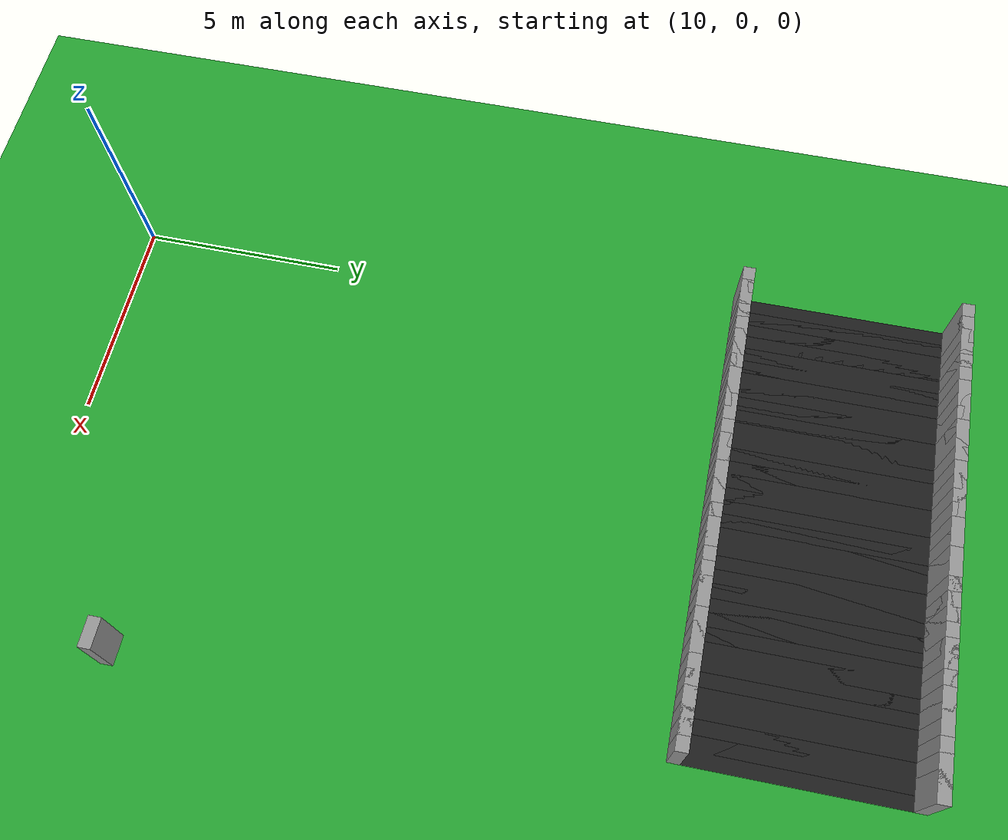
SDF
<sdf version="1.6">
 <world name="loop_stadium">
  <include><uri>model://sun</uri></include>
  <model name="ground_plane">
   <static>true</static>
   <link name="link">
    <collision name="collision">
     <surface><friction><ode><mu>100</mu><mu2>50</mu2></ode></friction></surface>
     <geometry><plane><normal>0 0 1</normal><size>120 120</size></plane></geometry>
    </collision>
    <visual name="visual">
     <geometry><plane><normal>0 0 1</normal><size>120 120</size></plane></geometry>
     <material>
      <script><uri>file://media/materials/scripts/gazebo.material</uri><name>Gazebo/Green</name></script>
     </material>
    </visual>
   </link>
  </model>
  <model name="curbL_59">
   <static>true</static>
   <pose>20.696 2.650 0.750 0 0 0.00000</pose>
   <link name="link">
    <collision name="collision"><geometry><box><size>0.708 0.300 1.500</size></box></geometry></collision>
    <visual name="visual">
     <geometry><box><size>0.708 0.300 1.500</size></box></geometry>
     <material>
      <script><uri>file://media/materials/scripts/gazebo.material</uri><name>Gazebo/Grey</name></script>
     </material>
    </visual>
   </link>
  </model>
  <model name="asphalt_160">
   <static>true</static>
   <pose>20.348 18.001 0.005 0 0 3.14159</pose>
   <link name="link">
    <visual name="visual">
     <geometry><box><size>0.708 5.000 0.010</size></box></geometry>
     <material>
      <script><uri>file://media/materials/scripts/gazebo.material</uri><name>Gazebo/Black</name></script>
     </material>
    </visual>
   </link>
  </model>
  <model name="curbL_160">
   <static>true</static>
   <pose>20.348 15.351 0.750 0 0 3.14159</pose>
   <link name="link">
    <collision name="collision"><geometry><box><size>0.708 0.300 1.500</size></box></geometry></collision>
    <visual name="visual">
     <geometry><box><size>0.708 0.300 1.500</size></box></geometry>
     <material>
      <script><uri>file://media/materials/scripts/gazebo.material</uri><name>Gazebo/Grey</name></script>
     </material>
    </visual>
   </link>
  </model>
  <model name="curbR_160">
   <static>true</static>
   <pose>20.348 20.651 0.750 0 0 3.14159</pose>
   <link name="link">
    <collision name="collision"><geometry><box><size>0.708 0.300 1.500</size></box></geometry></collision>
    <visual name="visual">
     <geometry><box><size>0.708 0.300 1.500</size></box></geometry>
     <material>
      <script><uri>file://media/materials/scripts/gazebo.material</uri><name>Gazebo/Grey</name></script>
     </material>
    </visual>
   </link>
  </model>
  <model name="asphalt_161">
   <static>true</static>
   <pose>20.000 18.001 0.005 0 0 3.14159</pose>
   <link name="link">
    <visual name="visual">
     <geometry><box><size>0.708 5.000 0.010</size></box></geometry>
     <material>
      <script><uri>file://media/materials/scripts/gazebo.material</uri><name>Gazebo/Black</name></script>
     </material>
    </visual>
   </link>
  </model>
  <model name="curbL_161">
   <static>true</static>
   <pose>20.000 15.351 0.750 0 0 3.14159</pose>
   <link name="link">
    <collision name="collision"><geometry><box><size>0.708 0.300 1.500</size></box></geometry></collision>
    <visual name="visual">
     <geometry><box><size>0.708 0.300 1.500</size></box></geometry>
     <material>
      <script><uri>file://media/materials/scripts/gazebo.material</uri><name>Gazebo/Grey</name></script>
     </material>
    </visual>
   </link>
  </model>
  <model name="curbR_161">
   <static>true</static>
   <pose>20.000 20.651 0.750 0 0 3.14159</pose>
   <link name="link">
    <collision name="collision"><geometry><box><size>0.708 0.300 1.500</size></box></geometry></collision>
    <visual name="visual">
     <geometry><box><size>0.708 0.300 1.500</size></box></geometry>
     <material>
      <script><uri>file://media/materials/scripts/gazebo.material</uri><name>Gazebo/Grey</name></script>
     </material>
    </visual>
   </link>
  </model>
  <model name="asphalt_162">
   <static>true</static>
   <pose>19.652 18.001 0.005 0 0 3.14159</pose>
   <link name="link">
    <visual name="visual">
     <geometry><box><size>0.708 5.000 0.010</size></box></geometry>
     <material>
      <script><uri>file://media/materials/scripts/gazebo.material</uri><name>Gazebo/Black</name></script>
     </material>
    </visual>
   </link>
  </model>
  <model name="curbL_162">
   <static>true</static>
   <pose>19.652 15.351 0.750 0 0 3.14159</pose>
   <link name="link">
    <collision name="collision"><geometry><box><size>0.708 0.300 1.500</size></box></geometry></collision>
    <visual name="visual">
     <geometry><box><size>0.708 0.300 1.500</size></box></geometry>
     <material>
      <script><uri>file://media/materials/scripts/gazebo.material</uri><name>Gazebo/Grey</name></script>
     </material>
    </visual>
   </link>
  </model>
  <model name="curbR_162">
   <static>true</static>
   <pose>19.652 20.651 0.750 0 0 3.14159</pose>
   <link name="link">
    <collision name="collision"><geometry><box><size>0.708 0.300 1.500</size></box></geometry></collision>
    <visual name="visual">
     <geometry><box><size>0.708 0.300 1.500</size></box></geometry>
     <material>
      <script><uri>file://media/materials/scripts/gazebo.material</uri><name>Gazebo/Grey</name></script>
     </material>
    </visual>
   </link>
  </model>
  <model name="asphalt_163">
   <static>true</static>
   <pose>19.304 18.001 0.005 0 0 3.14159</pose>
   <link name="link">
    <visual name="visual">
     <geometry><box><size>0.708 5.000 0.010</size></box></geometry>
     <material>
      <script><uri>file://media/materials/scripts/gazebo.material</uri><name>Gazebo/Black</name></script>
     </material>
    </visual>
   </link>
  </model>
  <model name="curbL_163">
   <static>true</static>
   <pose>19.304 15.351 0.750 0 0 3.14159</pose>
   <link name="link">
    <collision name="collision"><geometry><box><size>0.708 0.300 1.500</size></box></geometry></collision>
    <visual name="visual">
     <geometry><box><size>0.708 0.300 1.500</size></box></geometry>
     <material>
      <script><uri>file://media/materials/scripts/gazebo.material</uri><name>Gazebo/Grey</name></script>
     </material>
    </visual>
   </link>
  </model>
  <model name="curbR_163">
   <static>true</static>
   <pose>19.304 20.651 0.750 0 0 3.14159</pose>
   <link name="link">
    <collision name="collision"><geometry><box><size>0.708 0.300 1.500</size></box></geometry></collision>
    <visual name="visual">
     <geometry><box><size>0.708 0.300 1.500</size></box></geometry>
     <material>
      <script><uri>file://media/materials/scripts/gazebo.material</uri><name>Gazebo/Grey</name></script>
     </material>
    </visual>
   </link>
  </model>
  <model name="asphalt_164">
   <static>true</static>
   <pose>18.957 18.001 0.005 0 0 3.14159</pose>
   <link name="link">
    <visual name="visual">
     <geometry><box><size>0.708 5.000 0.010</size></box></geometry>
     <material>
      <script><uri>file://media/materials/scripts/gazebo.material</uri><name>Gazebo/Black</name></script>
     </material>
    </visual>
   </link>
  </model>
  <model name="curbL_164">
   <static>true</static>
   <pose>18.957 15.351 0.750 0 0 3.14159</pose>
   <link name="link">
    <collision name="collision"><geometry><box><size>0.708 0.300 1.500</size></box></geometry></collision>
    <visual name="visual">
     <geometry><box><size>0.708 0.300 1.500</size></box></geometry>
     <material>
      <script><uri>file://media/materials/scripts/gazebo.material</uri><name>Gazebo/Grey</name></script>
     </material>
    </visual>
   </link>
  </model>
  <model name="curbR_164">
   <static>true</static>
   <pose>18.957 20.651 0.750 0 0 3.14159</pose>
   <link name="link">
    <collision name="collision"><geometry><box><size>0.708 0.300 1.500</size></box></geometry></collision>
    <visual name="visual">
     <geometry><box><size>0.708 0.300 1.500</size></box></geometry>
     <material>
      <script><uri>file://media/materials/scripts/gazebo.material</uri><name>Gazebo/Grey</name></script>
     </material>
    </visual>
   </link>
  </model>
  <model name="asphalt_165">
   <static>true</static>
   <pose>18.609 18.001 0.005 0 0 3.14159</pose>
   <link name="link">
    <visual name="visual">
     <geometry><box><size>0.708 5.000 0.010</size></box></geometry>
     <material>
      <script><uri>file://media/materials/scripts/gazebo.material</uri><name>Gazebo/Black</name></script>
     </material>
    </visual>
   </link>
  </model>
  <model name="curbL_165">
   <static>true</static>
   <pose>18.609 15.351 0.750 0 0 3.14159</pose>
   <link name="link">
    <collision name="collision"><geometry><box><size>0.708 0.300 1.500</size></box></geometry></collision>
    <visual name="visual">
     <geometry><box><size>0.708 0.300 1.500</size></box></geometry>
     <material>
      <script><uri>file://media/materials/scripts/gazebo.material</uri><name>Gazebo/Grey</name></script>
     </material>
    </visual>
   </link>
  </model>
  <model name="curbR_165">
   <static>true</static>
   <pose>18.609 20.651 0.750 0 0 3.14159</pose>
   <link name="link">
    <collision name="collision"><geometry><box><size>0.708 0.300 1.500</size></box></geometry></collision>
    <visual name="visual">
     <geometry><box><size>0.708 0.300 1.500</size></box></geometry>
     <material>
      <script><uri>file://media/materials/scripts/gazebo.material</uri><name>Gazebo/Grey</name></script>
     </material>
    </visual>
   </link>
  </model>
  <model name="asphalt_166">
   <static>true</static>
   <pose>18.261 18.001 0.005 0 0 3.14159</pose>
   <link name="link">
    <visual name="visual">
     <geometry><box><size>0.708 5.000 0.010</size></box></geometry>
     <material>
      <script><uri>file://media/materials/scripts/gazebo.material</uri><name>Gazebo/Black</name></script>
     </material>
    </visual>
   </link>
  </model>
  <model name="curbL_166">
   <static>true</static>
   <pose>18.261 15.351 0.750 0 0 3.14159</pose>
   <link name="link">
    <collision name="collision"><geometry><box><size>0.708 0.300 1.500</size></box></geometry></collision>
    <visual name="visual">
     <geometry><box><size>0.708 0.300 1.500</size></box></geometry>
     <material>
      <script><uri>file://media/materials/scripts/gazebo.material</uri><name>Gazebo/Grey</name></script>
     </material>
    </visual>
   </link>
  </model>
  <model name="curbR_166">
   <static>true</static>
   <pose>18.261 20.651 0.750 0 0 3.14159</pose>
   <link name="link">
    <collision name="collision"><geometry><box><size>0.708 0.300 1.500</size></box></geometry></collision>
    <visual name="visual">
     <geometry><box><size>0.708 0.300 1.500</size></box></geometry>
     <material>
      <script><uri>file://media/materials/scripts/gazebo.material</uri><name>Gazebo/Grey</name></script>
     </material>
    </visual>
   </link>
  </model>
  <model name="asphalt_167">
   <static>true</static>
   <pose>17.913 18.001 0.005 0 0 3.14159</pose>
   <link name="link">
    <visual name="visual">
     <geometry><box><size>0.708 5.000 0.010</size></box></geometry>
     <material>
      <script><uri>file://media/materials/scripts/gazebo.material</uri><name>Gazebo/Black</name></script>
     </material>
    </visual>
   </link>
  </model>
  <model name="curbL_167">
   <static>true</static>
   <pose>17.913 15.351 0.750 0 0 3.14159</pose>
   <link name="link">
    <collision name="collision"><geometry><box><size>0.708 0.300 1.500</size></box></geometry></collision>
    <visual name="visual">
     <geometry><box><size>0.708 0.300 1.500</size></box></geometry>
     <material>
      <script><uri>file://media/materials/scripts/gazebo.material</uri><name>Gazebo/Grey</name></script>
     </material>
    </visual>
   </link>
  </model>
  <model name="curbR_167">
   <static>true</static>
   <pose>17.913 20.651 0.750 0 0 3.14159</pose>
   <link name="link">
    <collision name="collision"><geometry><box><size>0.708 0.300 1.500</size></box></geometry></collision>
    <visual name="visual">
     <geometry><box><size>0.708 0.300 1.500</size></box></geometry>
     <material>
      <script><uri>file://media/materials/scripts/gazebo.material</uri><name>Gazebo/Grey</name></script>
     </material>
    </visual>
   </link>
  </model>
  <model name="asphalt_168">
   <static>true</static>
   <pose>17.565 18.001 0.005 0 0 3.14159</pose>
   <link name="link">
    <visual name="visual">
     <geometry><box><size>0.708 5.000 0.010</size></box></geometry>
     <material>
      <script><uri>file://media/materials/scripts/gazebo.material</uri><name>Gazebo/Black</name></script>
     </material>
    </visual>
   </link>
  </model>
  <model name="curbL_168">
   <static>true</static>
   <pose>17.565 15.351 0.750 0 0 3.14159</pose>
   <link name="link">
    <collision name="collision"><geometry><box><size>0.708 0.300 1.500</size></box></geometry></collision>
    <visual name="visual">
     <geometry><box><size>0.708 0.300 1.500</size></box></geometry>
     <material>
      <script><uri>file://media/materials/scripts/gazebo.material</uri><name>Gazebo/Grey</name></script>
     </material>
    </visual>
   </link>
  </model>
  <model name="curbR_168">
   <static>true</static>
   <pose>17.565 20.651 0.750 0 0 3.14159</pose>
   <link name="link">
    <collision name="collision"><geometry><box><size>0.708 0.300 1.500</size></box></geometry></collision>
    <visual name="visual">
     <geometry><box><size>0.708 0.300 1.500</size></box></geometry>
     <material>
      <script><uri>file://media/materials/scripts/gazebo.material</uri><name>Gazebo/Grey</name></script>
     </material>
    </visual>
   </link>
  </model>
  <model name="asphalt_169">
   <static>true</static>
   <pose>17.217 18.001 0.005 0 0 3.14159</pose>
   <link name="link">
    <visual name="visual">
     <geometry><box><size>0.708 5.000 0.010</size></box></geometry>
     <material>
      <script><uri>file://media/materials/scripts/gazebo.material</uri><name>Gazebo/Black</name></script>
     </material>
    </visual>
   </link>
  </model>
  <model name="curbL_169">
   <static>true</static>
   <pose>17.217 15.351 0.750 0 0 3.14159</pose>
   <link name="link">
    <collision name="collision"><geometry><box><size>0.708 0.300 1.500</size></box></geometry></collision>
    <visual name="visual">
     <geometry><box><size>0.708 0.300 1.500</size></box></geometry>
     <material>
      <script><uri>file://media/materials/scripts/gazebo.material</uri><name>Gazebo/Grey</name></script>
     </material>
    </visual>
   </link>
  </model>
  <model name="curbR_169">
   <static>true</static>
   <pose>17.217 20.651 0.750 0 0 3.14159</pose>
   <link name="link">
    <collision name="collision"><geometry><box><size>0.708 0.300 1.500</size></box></geometry></collision>
    <visual name="visual">
     <geometry><box><size>0.708 0.300 1.500</size></box></geometry>
     <material>
      <script><uri>file://media/materials/scripts/gazebo.material</uri><name>Gazebo/Grey</name></script>
     </material>
    </visual>
   </link>
  </model>
  <model name="asphalt_170">
   <static>true</static>
   <pose>16.870 18.001 0.005 0 0 3.14159</pose>
   <link name="link">
    <visual name="visual">
     <geometry><box><size>0.708 5.000 0.010</size></box></geometry>
     <material>
      <script><uri>file://media/materials/scripts/gazebo.material</uri><name>Gazebo/Black</name></script>
     </material>
    </visual>
   </link>
  </model>
  <model name="curbL_170">
   <static>true</static>
   <pose>16.870 15.351 0.750 0 0 3.14159</pose>
   <link name="link">
    <collision name="collision"><geometry><box><size>0.708 0.300 1.500</size></box></geometry></collision>
    <visual name="visual">
     <geometry><box><size>0.708 0.300 1.500</size></box></geometry>
     <material>
      <script><uri>file://media/materials/scripts/gazebo.material</uri><name>Gazebo/Grey</name></script>
     </material>
    </visual>
   </link>
  </model>
  <model name="curbR_170">
   <static>true</static>
   <pose>16.870 20.651 0.750 0 0 3.14159</pose>
   <link name="link">
    <collision name="collision"><geometry><box><size>0.708 0.300 1.500</size></box></geometry></collision>
    <visual name="visual">
     <geometry><box><size>0.708 0.300 1.500</size></box></geometry>
     <material>
      <script><uri>file://media/materials/scripts/gazebo.material</uri><name>Gazebo/Grey</name></script>
     </material>
    </visual>
   </link>
  </model>
  <model name="asphalt_171">
   <static>true</static>
   <pose>16.522 18.001 0.005 0 0 3.14159</pose>
   <link name="link">
    <visual name="visual">
     <geometry><box><size>0.708 5.000 0.010</size></box></geometry>
     <material>
      <script><uri>file://media/materials/scripts/gazebo.material</uri><name>Gazebo/Black</name></script>
     </material>
    </visual>
   </link>
  </model>
  <model name="curbL_171">
   <static>true</static>
   <pose>16.522 15.351 0.750 0 0 3.14159</pose>
   <link name="link">
    <collision name="collision"><geometry><box><size>0.708 0.300 1.500</size></box></geometry></collision>
    <visual name="visual">
     <geometry><box><size>0.708 0.300 1.500</size></box></geometry>
     <material>
      <script><uri>file://media/materials/scripts/gazebo.material</uri><name>Gazebo/Grey</name></script>
     </material>
    </visual>
   </link>
  </model>
  <model name="curbR_171">
   <static>true</static>
   <pose>16.522 20.651 0.750 0 0 3.14159</pose>
   <link name="link">
    <collision name="collision"><geometry><box><size>0.708 0.300 1.500</size></box></geometry></collision>
    <visual name="visual">
     <geometry><box><size>0.708 0.300 1.500</size></box></geometry>
     <material>
      <script><uri>file://media/materials/scripts/gazebo.material</uri><name>Gazebo/Grey</name></script>
     </material>
    </visual>
   </link>
  </model>
  <model name="asphalt_172">
   <static>true</static>
   <pose>16.174 18.001 0.005 0 0 3.14159</pose>
   <link name="link">
    <visual name="visual">
     <geometry><box><size>0.708 5.000 0.010</size></box></geometry>
     <material>
      <script><uri>file://media/materials/scripts/gazebo.material</uri><name>Gazebo/Black</name></script>
     </material>
    </visual>
   </link>
  </model>
  <model name="curbL_172">
   <static>true</static>
   <pose>16.174 15.351 0.750 0 0 3.14159</pose>
   <link name="link">
    <collision name="collision"><geometry><box><size>0.708 0.300 1.500</size></box></geometry></collision>
    <visual name="visual">
     <geometry><box><size>0.708 0.300 1.500</size></box></geometry>
     <material>
      <script><uri>file://media/materials/scripts/gazebo.material</uri><name>Gazebo/Grey</name></script>
     </material>
    </visual>
   </link>
  </model>
  <model name="curbR_172">
   <static>true</static>
   <pose>16.174 20.651 0.750 0 0 3.14159</pose>
   <link name="link">
    <collision name="collision"><geometry><box><size>0.708 0.300 1.500</size></box></geometry></collision>
    <visual name="visual">
     <geometry><box><size>0.708 0.300 1.500</size></box></geometry>
     <material>
      <script><uri>file://media/materials/scripts/gazebo.material</uri><name>Gazebo/Grey</name></script>
     </material>
    </visual>
   </link>
  </model>
  <model name="asphalt_173">
   <static>true</static>
   <pose>15.826 18.001 0.005 0 0 3.14159</pose>
   <link name="link">
    <visual name="visual">
     <geometry><box><size>0.708 5.000 0.010</size></box></geometry>
     <material>
      <script><uri>file://media/materials/scripts/gazebo.material</uri><name>Gazebo/Black</name></script>
     </material>
    </visual>
   </link>
  </model>
  <model name="curbL_173">
   <static>true</static>
   <pose>15.826 15.351 0.750 0 0 3.14159</pose>
   <link name="link">
    <collision name="collision"><geometry><box><size>0.708 0.300 1.500</size></box></geometry></collision>
    <visual name="visual">
     <geometry><box><size>0.708 0.300 1.500</size></box></geometry>
     <material>
      <script><uri>file://media/materials/scripts/gazebo.material</uri><name>Gazebo/Grey</name></script>
     </material>
    </visual>
   </link>
  </model>
  <model name="curbR_173">
   <static>true</static>
   <pose>15.826 20.651 0.750 0 0 3.14159</pose>
   <link name="link">
    <collision name="collision"><geometry><box><size>0.708 0.300 1.500</size></box></geometry></collision>
    <visual name="visual">
     <geometry><box><size>0.708 0.300 1.500</size></box></geometry>
     <material>
      <script><uri>file://media/materials/scripts/gazebo.material</uri><name>Gazebo/Grey</name></script>
     </material>
    </visual>
   </link>
  </model>
  <model name="asphalt_174">
   <static>true</static>
   <pose>15.478 18.001 0.005 0 0 3.14159</pose>
   <link name="link">
    <visual name="visual">
     <geometry><box><size>0.708 5.000 0.010</size></box></geometry>
     <material>
      <script><uri>file://media/materials/scripts/gazebo.material</uri><name>Gazebo/Black</name></script>
     </material>
    </visual>
   </link>
  </model>
  <model name="curbL_174">
   <static>true</static>
   <pose>15.478 15.351 0.750 0 0 3.14159</pose>
   <link name="link">
    <collision name="collision"><geometry><box><size>0.708 0.300 1.500</size></box></geometry></collision>
    <visual name="visual">
     <geometry><box><size>0.708 0.300 1.500</size></box></geometry>
     <material>
      <script><uri>file://media/materials/scripts/gazebo.material</uri><name>Gazebo/Grey</name></script>
     </material>
    </visual>
   </link>
  </model>
  <model name="curbR_174">
   <static>true</static>
   <pose>15.478 20.651 0.750 0 0 3.14159</pose>
   <link name="link">
    <collision name="collision"><geometry><box><size>0.708 0.300 1.500</size></box></geometry></collision>
    <visual name="visual">
     <geometry><box><size>0.708 0.300 1.500</size></box></geometry>
     <material>
      <script><uri>file://media/materials/scripts/gazebo.material</uri><name>Gazebo/Grey</name></script>
     </material>
    </visual>
   </link>
  </model>
  <model name="asphalt_175">
   <static>true</static>
   <pose>15.130 18.001 0.005 0 0 3.14159</pose>
   <link name="link">
    <visual name="visual">
     <geometry><box><size>0.708 5.000 0.010</size></box></geometry>
     <material>
      <script><uri>file://media/materials/scripts/gazebo.material</uri><name>Gazebo/Black</name></script>
     </material>
    </visual>
   </link>
  </model>
  <model name="curbL_175">
   <static>true</static>
   <pose>15.130 15.351 0.750 0 0 3.14159</pose>
   <link name="link">
    <collision name="collision"><geometry><box><size>0.708 0.300 1.500</size></box></geometry></collision>
    <visual name="visual">
     <geometry><box><size>0.708 0.300 1.500</size></box></geometry>
     <material>
      <script><uri>file://media/materials/scripts/gazebo.material</uri><name>Gazebo/Grey</name></script>
     </material>
    </visual>
   </link>
  </model>
  <model name="curbR_175">
   <static>true</static>
   <pose>15.130 20.651 0.750 0 0 3.14159</pose>
   <link name="link">
    <collision name="collision"><geometry><box><size>0.708 0.300 1.500</size></box></geometry></collision>
    <visual name="visual">
     <geometry><box><size>0.708 0.300 1.500</size></box></geometry>
     <material>
      <script><uri>file://media/materials/scripts/gazebo.material</uri><name>Gazebo/Grey</name></script>
     </material>
    </visual>
   </link>
  </model>
  <model name="asphalt_176">
   <static>true</static>
   <pose>14.783 18.001 0.005 0 0 3.14159</pose>
   <link name="link">
    <visual name="visual">
     <geometry><box><size>0.708 5.000 0.010</size></box></geometry>
     <material>
      <script><uri>file://media/materials/scripts/gazebo.material</uri><name>Gazebo/Black</name></script>
     </material>
    </visual>
   </link>
  </model>
  <model name="curbL_176">
   <static>true</static>
   <pose>14.783 15.351 0.750 0 0 3.14159</pose>
   <link name="link">
    <collision name="collision"><geometry><box><size>0.708 0.300 1.500</size></box></geometry></collision>
    <visual name="visual">
     <geometry><box><size>0.708 0.300 1.500</size></box></geometry>
     <material>
      <script><uri>file://media/materials/scripts/gazebo.material</uri><name>Gazebo/Grey</name></script>
     </material>
    </visual>
   </link>
  </model>
  <model name="curbR_176">
   <static>true</static>
   <pose>14.783 20.651 0.750 0 0 3.14159</pose>
   <link name="link">
    <collision name="collision"><geometry><box><size>0.708 0.300 1.500</size></box></geometry></collision>
    <visual name="visual">
     <geometry><box><size>0.708 0.300 1.500</size></box></geometry>
     <material>
      <script><uri>file://media/materials/scripts/gazebo.material</uri><name>Gazebo/Grey</name></script>
     </material>
    </visual>
   </link>
  </model>
  <model name="asphalt_177">
   <static>true</static>
   <pose>14.435 18.001 0.005 0 0 3.14159</pose>
   <link name="link">
    <visual name="visual">
     <geometry><box><size>0.708 5.000 0.010</size></box></geometry>
     <material>
      <script><uri>file://media/materials/scripts/gazebo.material</uri><name>Gazebo/Black</name></script>
     </material>
    </visual>
   </link>
  </model>
  <model name="curbL_177">
   <static>true</static>
   <pose>14.435 15.351 0.750 0 0 3.14159</pose>
   <link name="link">
    <collision name="collision"><geometry><box><size>0.708 0.300 1.500</size></box></geometry></collision>
    <visual name="visual">
     <geometry><box><size>0.708 0.300 1.500</size></box></geometry>
     <material>
      <script><uri>file://media/materials/scripts/gazebo.material</uri><name>Gazebo/Grey</name></script>
     </material>
    </visual>
   </link>
  </model>
  <model name="curbR_177">
   <static>true</static>
   <pose>14.435 20.651 0.750 0 0 3.14159</pose>
   <link name="link">
    <collision name="collision"><geometry><box><size>0.708 0.300 1.500</size></box></geometry></collision>
    <visual name="visual">
     <geometry><box><size>0.708 0.300 1.500</size></box></geometry>
     <material>
      <script><uri>file://media/materials/scripts/gazebo.material</uri><name>Gazebo/Grey</name></script>
     </material>
    </visual>
   </link>
  </model>
  <model name="asphalt_178">
   <static>true</static>
   <pose>14.087 18.001 0.005 0 0 3.14159</pose>
   <link name="link">
    <visual name="visual">
     <geometry><box><size>0.708 5.000 0.010</size></box></geometry>
     <material>
      <script><uri>file://media/materials/scripts/gazebo.material</uri><name>Gazebo/Black</name></script>
     </material>
    </visual>
   </link>
  </model>
  <model name="curbL_178">
   <static>true</static>
   <pose>14.087 15.351 0.750 0 0 3.14159</pose>
   <link name="link">
    <collision name="collision"><geometry><box><size>0.708 0.300 1.500</size></box></geometry></collision>
    <visual name="visual">
     <geometry><box><size>0.708 0.300 1.500</size></box></geometry>
     <material>
      <script><uri>file://media/materials/scripts/gazebo.material</uri><name>Gazebo/Grey</name></script>
     </material>
    </visual>
   </link>
  </model>
  <model name="curbR_178">
   <static>true</static>
   <pose>14.087 20.651 0.750 0 0 3.14159</pose>
   <link name="link">
    <collision name="collision"><geometry><box><size>0.708 0.300 1.500</size></box></geometry></collision>
    <visual name="visual">
     <geometry><box><size>0.708 0.300 1.500</size></box></geometry>
     <material>
      <script><uri>file://media/materials/scripts/gazebo.material</uri><name>Gazebo/Grey</name></script>
     </material>
    </visual>
   </link>
  </model>
  <model name="asphalt_179">
   <static>true</static>
   <pose>13.739 18.001 0.005 0 0 3.14159</pose>
   <link name="link">
    <visual name="visual">
     <geometry><box><size>0.708 5.000 0.010</size></box></geometry>
     <material>
      <script><uri>file://media/materials/scripts/gazebo.material</uri><name>Gazebo/Black</name></script>
     </material>
    </visual>
   </link>
  </model>
  <model name="curbL_179">
   <static>true</static>
   <pose>13.739 15.351 0.750 0 0 3.14159</pose>
   <link name="link">
    <collision name="collision"><geometry><box><size>0.708 0.300 1.500</size></box></geometry></collision>
    <visual name="visual">
     <geometry><box><size>0.708 0.300 1.500</size></box></geometry>
     <material>
      <script><uri>file://media/materials/scripts/gazebo.material</uri><name>Gazebo/Grey</name></script>
     </material>
    </visual>
   </link>
  </model>
  <model name="curbR_179">
   <static>true</static>
   <pose>13.739 20.651 0.750 0 0 3.14159</pose>
   <link name="link">
    <collision name="collision"><geometry><box><size>0.708 0.300 1.500</size></box></geometry></collision>
    <visual name="visual">
     <geometry><box><size>0.708 0.300 1.500</size></box></geometry>
     <material>
      <script><uri>file://media/materials/scripts/gazebo.material</uri><name>Gazebo/Grey</name></script>
     </material>
    </visual>
   </link>
  </model>
  <model name="asphalt_180">
   <static>true</static>
   <pose>13.391 18.001 0.005 0 0 3.14159</pose>
   <link name="link">
    <visual name="visual">
     <geometry><box><size>0.708 5.000 0.010</size></box></geometry>
     <material>
      <script><uri>file://media/materials/scripts/gazebo.material</uri><name>Gazebo/Black</name></script>
     </material>
    </visual>
   </link>
  </model>
  <model name="curbL_180">
   <static>true</static>
   <pose>13.391 15.351 0.750 0 0 3.14159</pose>
   <link name="link">
    <collision name="collision"><geometry><box><size>0.708 0.300 1.500</size></box></geometry></collision>
    <visual name="visual">
     <geometry><box><size>0.708 0.300 1.500</size></box></geometry>
     <material>
      <script><uri>file://media/materials/scripts/gazebo.material</uri><name>Gazebo/Grey</name></script>
     </material>
    </visual>
   </link>
  </model>
  <model name="curbR_180">
   <static>true</static>
   <pose>13.391 20.651 0.750 0 0 3.14159</pose>
   <link name="link">
    <collision name="collision"><geometry><box><size>0.708 0.300 1.500</size></box></geometry></collision>
    <visual name="visual">
     <geometry><box><size>0.708 0.300 1.500</size></box></geometry>
     <material>
      <script><uri>file://media/materials/scripts/gazebo.material</uri><name>Gazebo/Grey</name></script>
     </material>
    </visual>
   </link>
  </model>
  <model name="asphalt_181">
   <static>true</static>
   <pose>13.043 18.001 0.005 0 0 3.14159</pose>
   <link name="link">
    <visual name="visual">
     <geometry><box><size>0.708 5.000 0.010</size></box></geometry>
     <material>
      <script><uri>file://media/materials/scripts/gazebo.material</uri><name>Gazebo/Black</name></script>
     </material>
    </visual>
   </link>
  </model>
  <model name="curbL_181">
   <static>true</static>
   <pose>13.043 15.351 0.750 0 0 3.14159</pose>
   <link name="link">
    <collision name="collision"><geometry><box><size>0.708 0.300 1.500</size></box></geometry></collision>
    <visual name="visual">
     <geometry><box><size>0.708 0.300 1.500</size></box></geometry>
     <material>
      <script><uri>file://media/materials/scripts/gazebo.material</uri><name>Gazebo/Grey</name></script>
     </material>
    </visual>
   </link>
  </model>
  <model name="curbR_181">
   <static>true</static>
   <pose>13.043 20.651 0.750 0 0 3.14159</pose>
   <link name="link">
    <collision name="collision"><geometry><box><size>0.708 0.300 1.500</size></box></geometry></collision>
    <visual name="visual">
     <geometry><box><size>0.708 0.300 1.500</size></box></geometry>
     <material>
      <script><uri>file://media/materials/scripts/gazebo.material</uri><name>Gazebo/Grey</name></script>
     </material>
    </visual>
   </link>
  </model>
  <model name="asphalt_182">
   <static>true</static>
   <pose>12.696 18.001 0.005 0 0 3.14159</pose>
   <link name="link">
    <visual name="visual">
     <geometry><box><size>0.708 5.000 0.010</size></box></geometry>
     <material>
      <script><uri>file://media/materials/scripts/gazebo.material</uri><name>Gazebo/Black</name></script>
     </material>
    </visual>
   </link>
  </model>
  <model name="curbL_182">
   <static>true</static>
   <pose>12.696 15.351 0.750 0 0 3.14159</pose>
   <link name="link">
    <collision name="collision"><geometry><box><size>0.708 0.300 1.500</size></box></geometry></collision>
    <visual name="visual">
     <geometry><box><size>0.708 0.300 1.500</size></box></geometry>
     <material>
      <script><uri>file://media/materials/scripts/gazebo.material</uri><name>Gazebo/Grey</name></script>
     </material>
    </visual>
   </link>
  </model>
  <model name="curbR_182">
   <static>true</static>
   <pose>12.696 20.651 0.750 0 0 3.14159</pose>
   <link name="link">
    <collision name="collision"><geometry><box><size>0.708 0.300 1.500</size></box></geometry></collision>
    <visual name="visual">
     <geometry><box><size>0.708 0.300 1.500</size></box></geometry>
     <material>
      <script><uri>file://media/materials/scripts/gazebo.material</uri><name>Gazebo/Grey</name></script>
     </material>
    </visual>
   </link>
  </model>
  <model name="asphalt_183">
   <static>true</static>
   <pose>12.348 18.001 0.005 0 0 3.14159</pose>
   <link name="link">
    <visual name="visual">
     <geometry><box><size>0.708 5.000 0.010</size></box></geometry>
     <material>
      <script><uri>file://media/materials/scripts/gazebo.material</uri><name>Gazebo/Black</name></script>
     </material>
    </visual>
   </link>
  </model>
  <model name="curbL_183">
   <static>true</static>
   <pose>12.348 15.351 0.750 0 0 3.14159</pose>
   <link name="link">
    <collision name="collision"><geometry><box><size>0.708 0.300 1.500</size></box></geometry></collision>
    <visual name="visual">
     <geometry><box><size>0.708 0.300 1.500</size></box></geometry>
     <material>
      <script><uri>file://media/materials/scripts/gazebo.material</uri><name>Gazebo/Grey</name></script>
     </material>
    </visual>
   </link>
  </model>
  <model name="curbR_183">
   <static>true</static>
   <pose>12.348 20.651 0.750 0 0 3.14159</pose>
   <link name="link">
    <collision name="collision"><geometry><box><size>0.708 0.300 1.500</size></box></geometry></collision>
    <visual name="visual">
     <geometry><box><size>0.708 0.300 1.500</size></box></geometry>
     <material>
      <script><uri>file://media/materials/scripts/gazebo.material</uri><name>Gazebo/Grey</name></script>
     </material>
    </visual>
   </link>
  </model>
  <model name="asphalt_184">
   <static>true</static>
   <pose>12.000 18.001 0.005 0 0 3.14159</pose>
   <link name="link">
    <visual name="visual">
     <geometry><box><size>0.708 5.000 0.010</size></box></geometry>
     <material>
      <script><uri>file://media/materials/scripts/gazebo.material</uri><name>Gazebo/Black</name></script>
     </material>
    </visual>
   </link>
  </model>
  <model name="curbL_184">
   <static>true</static>
   <pose>12.000 15.351 0.750 0 0 3.14159</pose>
   <link name="link">
    <collision name="collision"><geometry><box><size>0.708 0.300 1.500</size></box></geometry></collision>
    <visual name="visual">
     <geometry><box><size>0.708 0.300 1.500</size></box></geometry>
     <material>
      <script><uri>file://media/materials/scripts/gazebo.material</uri><name>Gazebo/Grey</name></script>
     </material>
    </visual>
   </link>
  </model>
  <model name="curbR_184">
   <static>true</static>
   <pose>12.000 20.651 0.750 0 0 3.14159</pose>
   <link name="link">
    <collision name="collision"><geometry><box><size>0.708 0.300 1.500</size></box></geometry></collision>
    <visual name="visual">
     <geometry><box><size>0.708 0.300 1.500</size></box></geometry>
     <material>
      <script><uri>file://media/materials/scripts/gazebo.material</uri><name>Gazebo/Grey</name></script>
     </material>
    </visual>
   </link>
  </model>
  <model name="asphalt_185">
   <static>true</static>
   <pose>11.652 18.001 0.005 0 0 3.14159</pose>
   <link name="link">
    <visual name="visual">
     <geometry><box><size>0.708 5.000 0.010</size></box></geometry>
     <material>
      <script><uri>file://media/materials/scripts/gazebo.material</uri><name>Gazebo/Black</name></script>
     </material>
    </visual>
   </link>
  </model>
  <model name="curbL_185">
   <static>true</static>
   <pose>11.652 15.351 0.750 0 0 3.14159</pose>
   <link name="link">
    <collision name="collision"><geometry><box><size>0.708 0.300 1.500</size></box></geometry></collision>
    <visual name="visual">
     <geometry><box><size>0.708 0.300 1.500</size></box></geometry>
     <material>
      <script><uri>file://media/materials/scripts/gazebo.material</uri><name>Gazebo/Grey</name></script>
     </material>
    </visual>
   </link>
  </model>
  <model name="curbR_185">
   <static>true</static>
   <pose>11.652 20.651 0.750 0 0 3.14159</pose>
   <link name="link">
    <collision name="collision"><geometry><box><size>0.708 0.300 1.500</size></box></geometry></collision>
    <visual name="visual">
     <geometry><box><size>0.708 0.300 1.500</size></box></geometry>
     <material>
      <script><uri>file://media/materials/scripts/gazebo.material</uri><name>Gazebo/Grey</name></script>
     </material>
    </visual>
   </link>
  </model>
  <model name="asphalt_186">
   <static>true</static>
   <pose>11.304 18.001 0.005 0 0 3.14159</pose>
   <link name="link">
    <visual name="visual">
     <geometry><box><size>0.708 5.000 0.010</size></box></geometry>
     <material>
      <script><uri>file://media/materials/scripts/gazebo.material</uri><name>Gazebo/Black</name></script>
     </material>
    </visual>
   </link>
  </model>
  <model name="curbL_186">
   <static>true</static>
   <pose>11.304 15.351 0.750 0 0 3.14159</pose>
   <link name="link">
    <collision name="collision"><geometry><box><size>0.708 0.300 1.500</size></box></geometry></collision>
    <visual name="visual">
     <geometry><box><size>0.708 0.300 1.500</size></box></geometry>
     <material>
      <script><uri>file://media/materials/scripts/gazebo.material</uri><name>Gazebo/Grey</name></script>
     </material>
    </visual>
   </link>
  </model>
  <model name="curbR_186">
   <static>true</static>
   <pose>11.304 20.651 0.750 0 0 3.14159</pose>
   <link name="link">
    <collision name="collision"><geometry><box><size>0.708 0.300 1.500</size></box></geometry></collision>
    <visual name="visual">
     <geometry><box><size>0.708 0.300 1.500</size></box></geometry>
     <material>
      <script><uri>file://media/materials/scripts/gazebo.material</uri><name>Gazebo/Grey</name></script>
     </material>
    </visual>
   </link>
  </model>
  <model name="asphalt_187">
   <static>true</static>
   <pose>10.957 18.001 0.005 0 0 3.14159</pose>
   <link name="link">
    <visual name="visual">
     <geometry><box><size>0.708 5.000 0.010</size></box></geometry>
     <material>
      <script><uri>file://media/materials/scripts/gazebo.material</uri><name>Gazebo/Black</name></script>
     </material>
    </visual>
   </link>
  </model>
  <model name="curbL_187">
   <static>true</static>
   <pose>10.957 15.351 0.750 0 0 3.14159</pose>
   <link name="link">
    <collision name="collision"><geometry><box><size>0.708 0.300 1.500</size></box></geometry></collision>
    <visual name="visual">
     <geometry><box><size>0.708 0.300 1.500</size></box></geometry>
     <material>
      <script><uri>file://media/materials/scripts/gazebo.material</uri><name>Gazebo/Grey</name></script>
     </material>
    </visual>
   </link>
  </model>
  <model name="curbR_187">
   <static>true</static>
   <pose>10.957 20.651 0.750 0 0 3.14159</pose>
   <link name="link">
    <collision name="collision"><geometry><box><size>0.708 0.300 1.500</size></box></geometry></collision>
    <visual name="visual">
     <geometry><box><size>0.708 0.300 1.500</size></box></geometry>
     <material>
      <script><uri>file://media/materials/scripts/gazebo.material</uri><name>Gazebo/Grey</name></script>
     </material>
    </visual>
   </link>
  </model>
  <model name="asphalt_188">
   <static>true</static>
   <pose>10.609 18.001 0.005 0 0 3.14159</pose>
   <link name="link">
    <visual name="visual">
     <geometry><box><size>0.708 5.000 0.010</size></box></geometry>
     <material>
      <script><uri>file://media/materials/scripts/gazebo.material</uri><name>Gazebo/Black</name></script>
     </material>
    </visual>
   </link>
  </model>
  <model name="curbL_188">
   <static>true</static>
   <pose>10.609 15.351 0.750 0 0 3.14159</pose>
   <link name="link">
    <collision name="collision"><geometry><box><size>0.708 0.300 1.500</size></box></geometry></collision>
    <visual name="visual">
     <geometry><box><size>0.708 0.300 1.500</size></box></geometry>
     <material>
      <script><uri>file://media/materials/scripts/gazebo.material</uri><name>Gazebo/Grey</name></script>
     </material>
    </visual>
   </link>
  </model>
  <model name="curbR_188">
   <static>true</static>
   <pose>10.609 20.651 0.750 0 0 3.14159</pose>
   <link name="link">
    <collision name="collision"><geometry><box><size>0.708 0.300 1.500</size></box></geometry></collision>
    <visual name="visual">
     <geometry><box><size>0.708 0.300 1.500</size></box></geometry>
     <material>
      <script><uri>file://media/materials/scripts/gazebo.material</uri><name>Gazebo/Grey</name></script>
     </material>
    </visual>
   </link>
  </model>
  <model name="asphalt_189">
   <static>true</static>
   <pose>10.261 18.001 0.005 0 0 3.14159</pose>
   <link name="link">
    <visual name="visual">
     <geometry><box><size>0.708 5.000 0.010</size></box></geometry>
     <material>
      <script><uri>file://media/materials/scripts/gazebo.material</uri><name>Gazebo/Black</name></script>
     </material>
    </visual>
   </link>
  </model>
  <model name="curbL_189">
   <static>true</static>
   <pose>10.261 15.351 0.750 0 0 3.14159</pose>
   <link name="link">
    <collision name="collision"><geometry><box><size>0.708 0.300 1.500</size></box></geometry></collision>
    <visual name="visual">
     <geometry><box><size>0.708 0.300 1.500</size></box></geometry>
     <material>
      <script><uri>file://media/materials/scripts/gazebo.material</uri><name>Gazebo/Grey</name></script>
     </material>
    </visual>
   </link>
  </model>
  <model name="curbR_189">
   <static>true</static>
   <pose>10.261 20.651 0.750 0 0 3.14159</pose>
   <link name="link">
    <collision name="collision"><geometry><box><size>0.708 0.300 1.500</size></box></geometry></collision>
    <visual name="visual">
     <geometry><box><size>0.708 0.300 1.500</size></box></geometry>
     <material>
      <script><uri>file://media/materials/scripts/gazebo.material</uri><name>Gazebo/Grey</name></script>
     </material>
    </visual>
   </link>
  </model>
  <model name="asphalt_190">
   <static>true</static>
   <pose>9.913 18.001 0.005 0 0 3.14159</pose>
   <link name="link">
    <visual name="visual">
     <geometry><box><size>0.708 5.000 0.010</size></box></geometry>
     <material>
      <script><uri>file://media/materials/scripts/gazebo.material</uri><name>Gazebo/Black</name></script>
     </material>
    </visual>
   </link>
  </model>
  <model name="curbL_190">
   <static>true</static>
   <pose>9.913 15.351 0.750 0 0 3.14159</pose>
   <link name="link">
    <collision name="collision"><geometry><box><size>0.708 0.300 1.500</size></box></geometry></collision>
    <visual name="visual">
     <geometry><box><size>0.708 0.300 1.500</size></box></geometry>
     <material>
      <script><uri>file://media/materials/scripts/gazebo.material</uri><name>Gazebo/Grey</name></script>
     </material>
    </visual>
   </link>
  </model>
  <model name="curbR_190">
   <static>true</static>
   <pose>9.913 20.651 0.750 0 0 3.14159</pose>
   <link name="link">
    <collision name="collision"><geometry><box><size>0.708 0.300 1.500</size></box></geometry></collision>
    <visual name="visual">
     <geometry><box><size>0.708 0.300 1.500</size></box></geometry>
     <material>
      <script><uri>file://media/materials/scripts/gazebo.material</uri><name>Gazebo/Grey</name></script>
     </material>
    </visual>
   </link>
  </model>
  <model name="asphalt_191">
   <static>true</static>
   <pose>9.565 18.001 0.005 0 0 3.14159</pose>
   <link name="link">
    <visual name="visual">
     <geometry><box><size>0.708 5.000 0.010</size></box></geometry>
     <material>
      <script><uri>file://media/materials/scripts/gazebo.material</uri><name>Gazebo/Black</name></script>
     </material>
    </visual>
   </link>
  </model>
  <model name="curbL_191">
   <static>true</static>
   <pose>9.565 15.351 0.750 0 0 3.14159</pose>
   <link name="link">
    <collision name="collision"><geometry><box><size>0.708 0.300 1.500</size></box></geometry></collision>
    <visual name="visual">
     <geometry><box><size>0.708 0.300 1.500</size></box></geometry>
     <material>
      <script><uri>file://media/materials/scripts/gazebo.material</uri><name>Gazebo/Grey</name></script>
     </material>
    </visual>
   </link>
  </model>
  <model name="curbR_191">
   <static>true</static>
   <pose>9.565 20.651 0.750 0 0 3.14159</pose>
   <link name="link">
    <collision name="collision"><geometry><box><size>0.708 0.300 1.500</size></box></geometry></collision>
    <visual name="visual">
     <geometry><box><size>0.708 0.300 1.500</size></box></geometry>
     <material>
      <script><uri>file://media/materials/scripts/gazebo.material</uri><name>Gazebo/Grey</name></script>
     </material>
    </visual>
   </link>
  </model>
  <model name="asphalt_192">
   <static>true</static>
   <pose>9.217 18.001 0.005 0 0 3.14159</pose>
   <link name="link">
    <visual name="visual">
     <geometry><box><size>0.708 5.000 0.010</size></box></geometry>
     <material>
      <script><uri>file://media/materials/scripts/gazebo.material</uri><name>Gazebo/Black</name></script>
     </material>
    </visual>
   </link>
  </model>
  <model name="curbL_192">
   <static>true</static>
   <pose>9.217 15.351 0.750 0 0 3.14159</pose>
   <link name="link">
    <collision name="collision"><geometry><box><size>0.708 0.300 1.500</size></box></geometry></collision>
    <visual name="visual">
     <geometry><box><size>0.708 0.300 1.500</size></box></geometry>
     <material>
      <script><uri>file://media/materials/scripts/gazebo.material</uri><name>Gazebo/Grey</name></script>
     </material>
    </visual>
   </link>
  </model>
  <model name="curbR_192">
   <static>true</static>
   <pose>9.217 20.651 0.750 0 0 3.14159</pose>
   <link name="link">
    <collision name="collision"><geometry><box><size>0.708 0.300 1.500</size></box></geometry></collision>
    <visual name="visual">
     <geometry><box><size>0.708 0.300 1.500</size></box></geometry>
     <material>
      <script><uri>file://media/materials/scripts/gazebo.material</uri><name>Gazebo/Grey</name></script>
     </material>
    </visual>
   </link>
  </model>
 </world>
</sdf>
